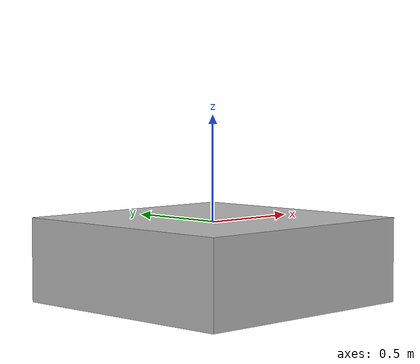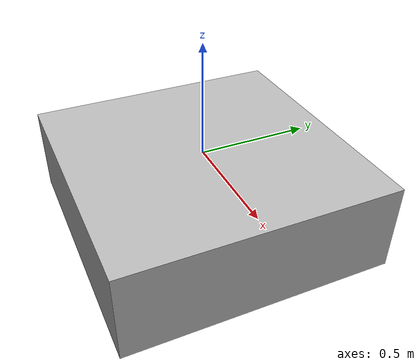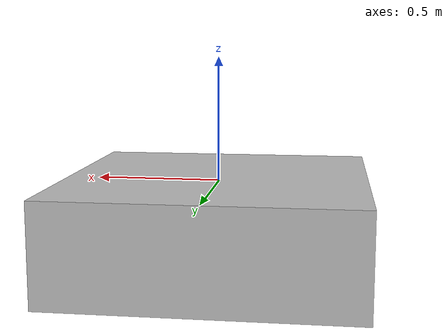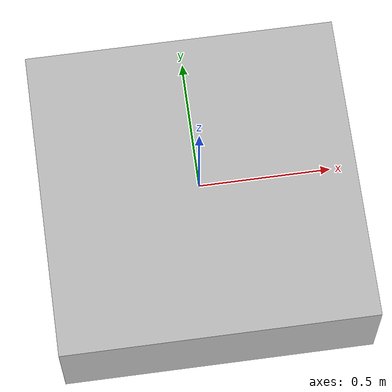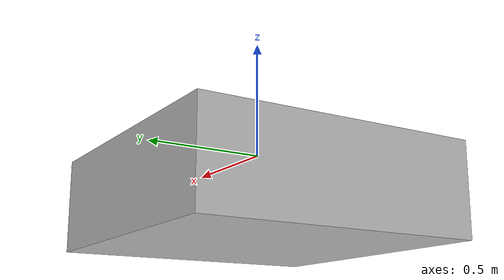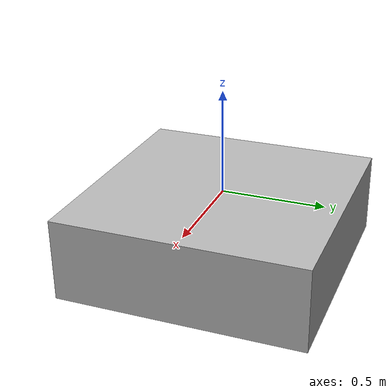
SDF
<?xml version="1.0" ?>
<sdf version="1.6">
  <model name="box_target_green">
    <pose>0 0 -0.18 0 0 0</pose>
    <static>true</static>
    <link name="link">
      <collision name="collision">
        <geometry>
          <box>
            <size>0.25 0.25 1</size>
          </box>
        </geometry>
      </collision>

      <visual name="visual">
        <geometry>
          <mesh>
            <uri>model://marker/meshes/mesh.dae</uri>
          </mesh>
        </geometry>
      </visual>
    </link>
  </model>
</sdf>
